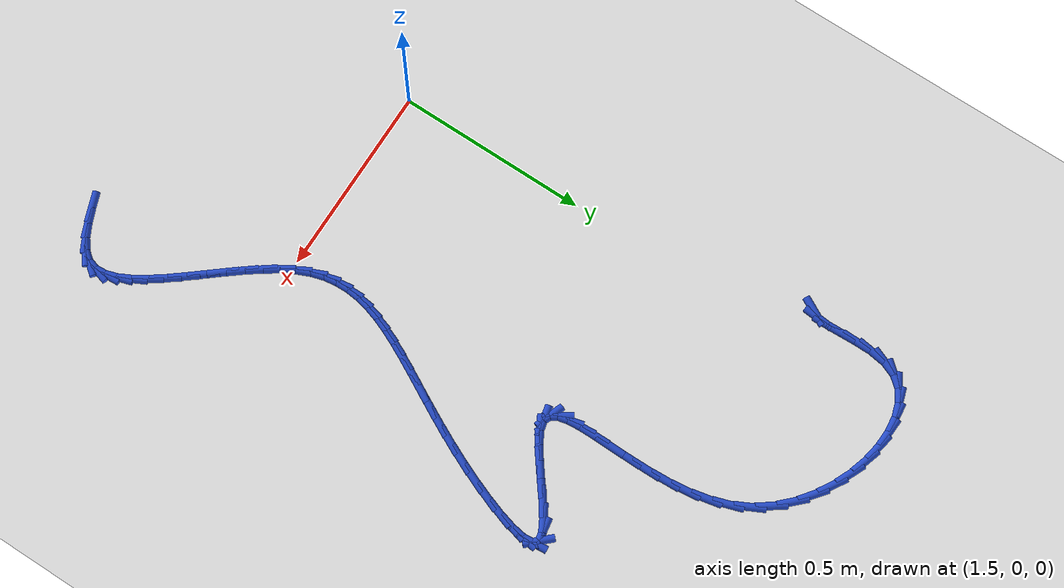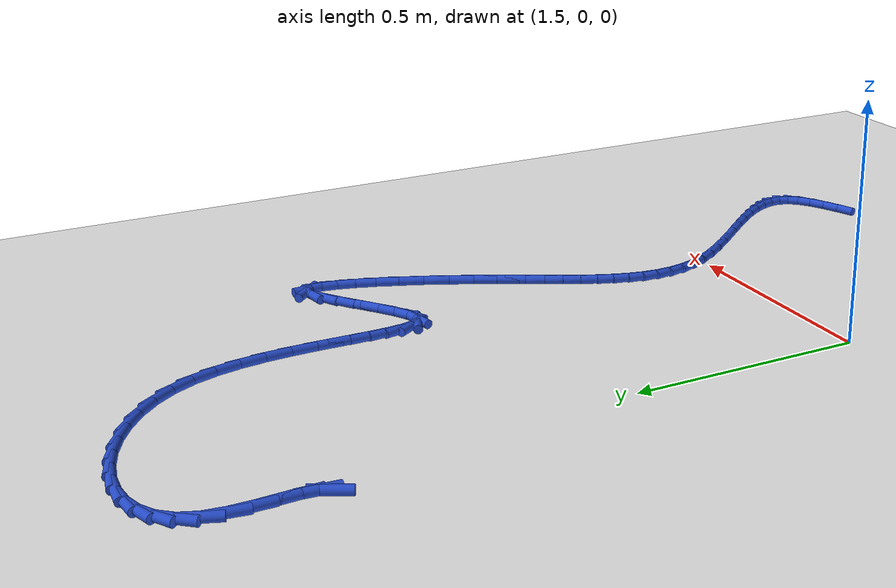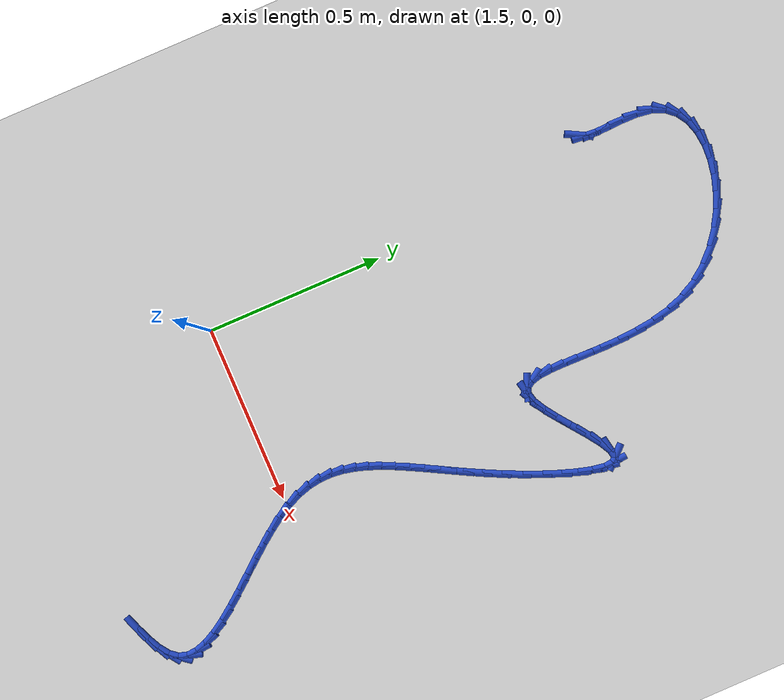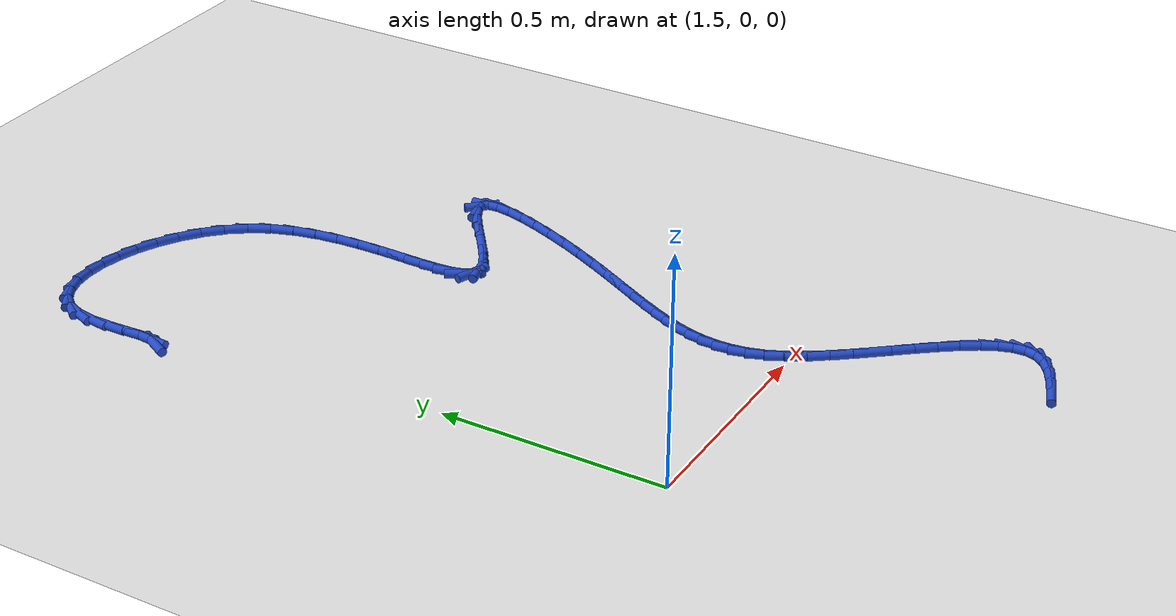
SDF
<sdf version="1.6">
 <world name="default">
  <model name="ground_plane">
   <static>1</static>
   <link name="link">
    <collision name="collision">
     <geometry><plane><normal>0 0 1</normal><size>100 100</size></plane></geometry>
     <surface><friction><ode><mu>100</mu><mu2>50</mu2></ode></friction></surface>
    </collision>
    <visual name="visual">
     <cast_shadows>0</cast_shadows>
     <geometry><plane><normal>0 0 1</normal><size>100 100</size></plane></geometry>
     <material>
      <script><uri>file://media/materials/scripts/gazebo.material</uri><name>Gazebo/WhiteGlow</name></script>
     </material>
    </visual>
   </link>
  </model>
  <model name="line">
   <link name="link_65">
    <pose>1.4097594566142557 1.1373101207919902 0.01 0 1.57 1.073990398935057</pose>
    <collision name="collision">
     <geometry><cylinder><radius>0.01</radius><length>0.08</length></cylinder></geometry>
    </collision>
    <visual name="visual">
     <material>
      <script><name>Gazebo/Blue</name><uri>file://media/materials/scripts/gazebo.material</uri></script>
     </material>
     <geometry><cylinder><radius>0.01</radius><length>0.08</length></cylinder></geometry>
    </visual>
   </link>
   <link name="link_66">
    <pose>1.4186358319287273 1.1536822923600076 0.01 0 1.57 1.4782395024272896</pose>
    <collision name="collision">
     <geometry><cylinder><radius>0.01</radius><length>0.08</length></cylinder></geometry>
    </collision>
    <visual name="visual">
     <material>
      <script><name>Gazebo/Blue</name><uri>file://media/materials/scripts/gazebo.material</uri></script>
     </material>
     <geometry><cylinder><radius>0.01</radius><length>0.08</length></cylinder></geometry>
    </visual>
   </link>
   <link name="link_67">
    <pose>1.4212848355850025 1.1822208132741445 0.01 0 1.57 -1.5417814878944056</pose>
    <collision name="collision">
     <geometry><cylinder><radius>0.01</radius><length>0.08</length></cylinder></geometry>
    </collision>
    <visual name="visual">
     <material>
      <script><name>Gazebo/Blue</name><uri>file://media/materials/scripts/gazebo.material</uri></script>
     </material>
     <geometry><cylinder><radius>0.01</radius><length>0.08</length></cylinder></geometry>
    </visual>
   </link>
   <link name="link_68">
    <pose>1.420191697594676 1.2198853758848303 0.01 0 1.57 -1.5292357707222544</pose>
    <collision name="collision">
     <geometry><cylinder><radius>0.01</radius><length>0.08</length></cylinder></geometry>
    </collision>
    <visual name="visual">
     <material>
      <script><name>Gazebo/Blue</name><uri>file://media/materials/scripts/gazebo.material</uri></script>
     </material>
     <geometry><cylinder><radius>0.01</radius><length>0.08</length></cylinder></geometry>
    </visual>
   </link>
   <link name="link_69">
    <pose>1.4184104249326042 1.2627203888572482 0.01 0 1.57 1.5575257928130686</pose>
    <collision name="collision">
     <geometry><cylinder><radius>0.01</radius><length>0.08</length></cylinder></geometry>
    </collision>
    <visual name="visual">
     <material>
      <script><name>Gazebo/Blue</name><uri>file://media/materials/scripts/gazebo.material</uri></script>
     </material>
     <geometry><cylinder><radius>0.01</radius><length>0.08</length></cylinder></geometry>
    </visual>
   </link>
   <link name="link_70">
    <pose>1.4189950245736465 1.3067702608565814 0.01 0 1.57 1.4264524954980144</pose>
    <collision name="collision">
     <geometry><cylinder><radius>0.01</radius><length>0.08</length></cylinder></geometry>
    </collision>
    <visual name="visual">
     <material>
      <script><name>Gazebo/Blue</name><uri>file://media/materials/scripts/gazebo.material</uri></script>
     </material>
     <geometry><cylinder><radius>0.01</radius><length>0.08</length></cylinder></geometry>
    </visual>
   </link>
   <link name="link_71">
    <pose>1.4249995034926581 1.3480794005480115 0.01 0 1.57 1.1809414222038175</pose>
    <collision name="collision">
     <geometry><cylinder><radius>0.01</radius><length>0.08</length></cylinder></geometry>
    </collision>
    <visual name="visual">
     <material>
      <script><name>Gazebo/Blue</name><uri>file://media/materials/scripts/gazebo.material</uri></script>
     </material>
     <geometry><cylinder><radius>0.01</radius><length>0.08</length></cylinder></geometry>
    </visual>
   </link>
   <link name="link_72">
    <pose>1.4392941006625046 1.3828691501328971 0.01 0 1.57 0.8620911882032548</pose>
    <collision name="collision">
     <geometry><cylinder><radius>0.01</radius><length>0.08</length></cylinder></geometry>
    </collision>
    <visual name="visual">
     <material>
      <script><name>Gazebo/Blue</name><uri>file://media/materials/scripts/gazebo.material</uri></script>
     </material>
     <geometry><cylinder><radius>0.01</radius><length>0.08</length></cylinder></geometry>
    </visual>
   </link>
   <link name="link_73">
    <pose>1.462306453932633 1.4097126108214784 0.01 0 1.57 0.5615721198788256</pose>
    <collision name="collision">
     <geometry><cylinder><radius>0.01</radius><length>0.08</length></cylinder></geometry>
    </collision>
    <visual name="visual">
     <material>
      <script><name>Gazebo/Blue</name><uri>file://media/materials/scripts/gazebo.material</uri></script>
     </material>
     <geometry><cylinder><radius>0.01</radius><length>0.08</length></cylinder></geometry>
    </visual>
   </link>
   <link name="link_74">
    <pose>1.4927295317153917 1.4288530396415071 0.01 0 1.57 0.31068465095912756</pose>
    <collision name="collision">
     <geometry><cylinder><radius>0.01</radius><length>0.08</length></cylinder></geometry>
    </collision>
    <visual name="visual">
     <material>
      <script><name>Gazebo/Blue</name><uri>file://media/materials/scripts/gazebo.material</uri></script>
     </material>
     <geometry><cylinder><radius>0.01</radius><length>0.08</length></cylinder></geometry>
    </visual>
   </link>
   <link name="link_75">
    <pose>1.529219340147345 1.4405692812425621 0.01 0 1.57 0.11045893317691098</pose>
    <collision name="collision">
     <geometry><cylinder><radius>0.01</radius><length>0.08</length></cylinder></geometry>
    </collision>
    <visual name="visual">
     <material>
      <script><name>Gazebo/Blue</name><uri>file://media/materials/scripts/gazebo.material</uri></script>
     </material>
     <geometry><cylinder><radius>0.01</radius><length>0.08</length></cylinder></geometry>
    </visual>
   </link>
   <link name="link_76">
    <pose>1.5704318853650607 1.4451401802742232 0.01 0 1.57 -0.05143547558953934</pose>
    <collision name="collision">
     <geometry><cylinder><radius>0.01</radius><length>0.08</length></cylinder></geometry>
    </collision>
    <visual name="visual">
     <material>
      <script><name>Gazebo/Blue</name><uri>file://media/materials/scripts/gazebo.material</uri></script>
     </material>
     <geometry><cylinder><radius>0.01</radius><length>0.08</length></cylinder></geometry>
    </visual>
   </link>
   <link name="link_77">
    <pose>1.6150231735051037 1.4428445813860702 0.01 0 1.57 -0.1882650131491371</pose>
    <collision name="collision">
     <geometry><cylinder><radius>0.01</radius><length>0.08</length></cylinder></geometry>
    </collision>
    <visual name="visual">
     <material>
      <script><name>Gazebo/Blue</name><uri>file://media/materials/scripts/gazebo.material</uri></script>
     </material>
     <geometry><cylinder><radius>0.01</radius><length>0.08</length></cylinder></geometry>
    </visual>
   </link>
   <link name="link_78">
    <pose>1.6616492107040415 1.4339613292276818 0.01 0 1.57 -0.3106743683656317</pose>
    <collision name="collision">
     <geometry><cylinder><radius>0.01</radius><length>0.08</length></cylinder></geometry>
    </collision>
    <visual name="visual">
     <material>
      <script><name>Gazebo/Blue</name><uri>file://media/materials/scripts/gazebo.material</uri></script>
     </material>
     <geometry><cylinder><radius>0.01</radius><length>0.08</length></cylinder></geometry>
    </visual>
   </link>
   <link name="link_79">
    <pose>1.7089660030984388 1.4187692684486382 0.01 0 1.57 -0.4268284969456083</pose>
    <collision name="collision">
     <geometry><cylinder><radius>0.01</radius><length>0.08</length></cylinder></geometry>
    </collision>
    <visual name="visual">
     <material>
      <script><name>Gazebo/Blue</name><uri>file://media/materials/scripts/gazebo.material</uri></script>
     </material>
     <geometry><cylinder><radius>0.01</radius><length>0.08</length></cylinder></geometry>
    </visual>
   </link>
   <link name="link_80">
    <pose>1.7556295568248619 1.3975472436985188 0.01 0 1.57 -0.5432683136498143</pose>
    <collision name="collision">
     <geometry><cylinder><radius>0.01</radius><length>0.08</length></cylinder></geometry>
    </collision>
    <visual name="visual">
     <material>
      <script><name>Gazebo/Blue</name><uri>file://media/materials/scripts/gazebo.material</uri></script>
     </material>
     <geometry><cylinder><radius>0.01</radius><length>0.08</length></cylinder></geometry>
    </visual>
   </link>
   <link name="link_81">
    <pose>1.8002958780198786 1.3705740996269025 0.01 0 1.57 -0.6656055834820161</pose>
    <collision name="collision">
     <geometry><cylinder><radius>0.01</radius><length>0.08</length></cylinder></geometry>
    </collision>
    <visual name="visual">
     <material>
      <script><name>Gazebo/Blue</name><uri>file://media/materials/scripts/gazebo.material</uri></script>
     </material>
     <geometry><cylinder><radius>0.01</radius><length>0.08</length></cylinder></geometry>
    </visual>
   </link>
   <link name="link_82">
    <pose>1.841620972820053 1.3381286808833697 0.01 0 1.57 -0.7988463482347915</pose>
    <collision name="collision">
     <geometry><cylinder><radius>0.01</radius><length>0.08</length></cylinder></geometry>
    </collision>
    <visual name="visual">
     <material>
      <script><name>Gazebo/Blue</name><uri>file://media/materials/scripts/gazebo.material</uri></script>
     </material>
     <geometry><cylinder><radius>0.01</radius><length>0.08</length></cylinder></geometry>
    </visual>
   </link>
   <link name="link_83">
    <pose>1.8782608473619522 1.3004898321174996 0.01 0 1.57 -0.9472038485041745</pose>
    <collision name="collision">
     <geometry><cylinder><radius>0.01</radius><length>0.08</length></cylinder></geometry>
    </collision>
    <visual name="visual">
     <material>
      <script><name>Gazebo/Blue</name><uri>file://media/materials/scripts/gazebo.material</uri></script>
     </material>
     <geometry><cylinder><radius>0.01</radius><length>0.08</length></cylinder></geometry>
    </visual>
   </link>
   <link name="link_84">
    <pose>1.9088715077821419 1.2579363979788716 0.01 0 1.57 -1.110380265226519</pose>
    <collision name="collision">
     <geometry><cylinder><radius>0.01</radius><length>0.08</length></cylinder></geometry>
    </collision>
    <visual name="visual">
     <material>
      <script><name>Gazebo/Blue</name><uri>file://media/materials/scripts/gazebo.material</uri></script>
     </material>
     <geometry><cylinder><radius>0.01</radius><length>0.08</length></cylinder></geometry>
    </visual>
   </link>
   <link name="link_85">
    <pose>1.932248152015312 1.210802937427662 0.01 0 1.57 -1.2582279417803577</pose>
    <collision name="collision">
     <geometry><cylinder><radius>0.01</radius><length>0.08</length></cylinder></geometry>
    </collision>
    <visual name="visual">
     <material>
      <script><name>Gazebo/Blue</name><uri>file://media/materials/scripts/gazebo.material</uri></script>
     </material>
     <geometry><cylinder><radius>0.01</radius><length>0.08</length></cylinder></geometry>
    </visual>
   </link>
   <link name="link_86">
    <pose>1.9486610533721995 1.160014437946167 0.01 0 1.57 -1.3738588940804595</pose>
    <collision name="collision">
     <geometry><cylinder><radius>0.01</radius><length>0.08</length></cylinder></geometry>
    </collision>
    <visual name="visual">
     <material>
      <script><name>Gazebo/Blue</name><uri>file://media/materials/scripts/gazebo.material</uri></script>
     </material>
     <geometry><cylinder><radius>0.01</radius><length>0.08</length></cylinder></geometry>
    </visual>
   </link>
   <link name="link_87">
    <pose>1.9592683583575459 1.106851276081046 0.01 0 1.57 -1.4611593790795754</pose>
    <collision name="collision">
     <geometry><cylinder><radius>0.01</radius><length>0.08</length></cylinder></geometry>
    </collision>
    <visual name="visual">
     <material>
      <script><name>Gazebo/Blue</name><uri>file://media/materials/scripts/gazebo.material</uri></script>
     </material>
     <geometry><cylinder><radius>0.01</radius><length>0.08</length></cylinder></geometry>
    </visual>
   </link>
   <link name="link_88">
    <pose>1.9652403925103799 1.0525987032818498 0.01 0 1.57 -1.524450691581582</pose>
    <collision name="collision">
     <geometry><cylinder><radius>0.01</radius><length>0.08</length></cylinder></geometry>
    </collision>
    <visual name="visual">
     <material>
      <script><name>Gazebo/Blue</name><uri>file://media/materials/scripts/gazebo.material</uri></script>
     </material>
     <geometry><cylinder><radius>0.01</radius><length>0.08</length></cylinder></geometry>
    </visual>
   </link>
   <link name="link_89">
    <pose>1.9677474813697282 0.9985419709981278 0.01 0 1.57 -1.5667551406680393</pose>
    <collision name="collision">
     <geometry><cylinder><radius>0.01</radius><length>0.08</length></cylinder></geometry>
    </collision>
    <visual name="visual">
     <material>
      <script><name>Gazebo/Blue</name><uri>file://media/materials/scripts/gazebo.material</uri></script>
     </material>
     <geometry><cylinder><radius>0.01</radius><length>0.08</length></cylinder></geometry>
    </visual>
   </link>
   <link name="link_90">
    <pose>1.9679599504746201 0.9459663306794324 0.01 0 1.57 1.5524920476686033</pose>
    <collision name="collision">
     <geometry><cylinder><radius>0.01</radius><length>0.08</length></cylinder></geometry>
    </collision>
    <visual name="visual">
     <material>
      <script><name>Gazebo/Blue</name><uri>file://media/materials/scripts/gazebo.material</uri></script>
     </material>
     <geometry><cylinder><radius>0.01</radius><length>0.08</length></cylinder></geometry>
    </visual>
   </link>
   <link name="link_91">
    <pose>1.9670481253640832 0.896157033775314 0.01 0 1.57 1.551877315386698</pose>
    <collision name="collision">
     <geometry><cylinder><radius>0.01</radius><length>0.08</length></cylinder></geometry>
    </collision>
    <visual name="visual">
     <material>
      <script><name>Gazebo/Blue</name><uri>file://media/materials/scripts/gazebo.material</uri></script>
     </material>
     <geometry><cylinder><radius>0.01</radius><length>0.08</length></cylinder></geometry>
    </visual>
   </link>
   <link name="link_92">
    <pose>1.9661823315771447 0.8503993317353225 0.01 0 1.57 -1.5621237175627367</pose>
    <collision name="collision">
     <geometry><cylinder><radius>0.01</radius><length>0.08</length></cylinder></geometry>
    </collision>
    <visual name="visual">
     <material>
      <script><name>Gazebo/Blue</name><uri>file://media/materials/scripts/gazebo.material</uri></script>
     </material>
     <geometry><cylinder><radius>0.01</radius><length>0.08</length></cylinder></geometry>
    </visual>
   </link>
   <link name="link_93">
    <pose>1.966532894652834 0.8099784760090086 0.01 0 1.57 -1.489986122174242</pose>
    <collision name="collision">
     <geometry><cylinder><radius>0.01</radius><length>0.08</length></cylinder></geometry>
    </collision>
    <visual name="visual">
     <material>
      <script><name>Gazebo/Blue</name><uri>file://media/materials/scripts/gazebo.material</uri></script>
     </material>
     <geometry><cylinder><radius>0.01</radius><length>0.08</length></cylinder></geometry>
    </visual>
   </link>
   <link name="link_94">
    <pose>1.9692701401301786 0.7761797180459242 0.01 0 1.57 -1.3323203555880963</pose>
    <collision name="collision">
     <geometry><cylinder><radius>0.01</radius><length>0.08</length></cylinder></geometry>
    </collision>
    <visual name="visual">
     <material>
      <script><name>Gazebo/Blue</name><uri>file://media/materials/scripts/gazebo.material</uri></script>
     </material>
     <geometry><cylinder><radius>0.01</radius><length>0.08</length></cylinder></geometry>
    </visual>
   </link>
   <link name="link_95">
    <pose>1.9755643935482072 0.7502883092956194 0.01 0 1.57 -0.9874077373202598</pose>
    <collision name="collision">
     <geometry><cylinder><radius>0.01</radius><length>0.08</length></cylinder></geometry>
    </collision>
    <visual name="visual">
     <material>
      <script><name>Gazebo/Blue</name><uri>file://media/materials/scripts/gazebo.material</uri></script>
     </material>
     <geometry><cylinder><radius>0.01</radius><length>0.08</length></cylinder></geometry>
    </visual>
   </link>
   <link name="link_96">
    <pose>1.9865859804459465 0.7335895012076443 0.01 0 1.57 -0.3523423061189216</pose>
    <collision name="collision">
     <geometry><cylinder><radius>0.01</radius><length>0.08</length></cylinder></geometry>
    </collision>
    <visual name="visual">
     <material>
      <script><name>Gazebo/Blue</name><uri>file://media/materials/scripts/gazebo.material</uri></script>
     </material>
     <geometry><cylinder><radius>0.01</radius><length>0.08</length></cylinder></geometry>
    </visual>
   </link>
   <link name="link_97">
    <pose>2.003505226362426 0.7273685452315507 0.01 0 1.57 0.22686735148599937</pose>
    <collision name="collision">
     <geometry><cylinder><radius>0.01</radius><length>0.08</length></cylinder></geometry>
    </collision>
    <visual name="visual">
     <material>
      <script><name>Gazebo/Blue</name><uri>file://media/materials/scripts/gazebo.material</uri></script>
     </material>
     <geometry><cylinder><radius>0.01</radius><length>0.08</length></cylinder></geometry>
    </visual>
   </link>
   <link name="link_98">
    <pose>2.027488308505057 0.732904833092843 0.01 0 1.57 0.5017308571314343</pose>
    <collision name="collision">
     <geometry><cylinder><radius>0.01</radius><length>0.08</length></cylinder></geometry>
    </collision>
    <visual name="visual">
     <material>
      <script><name>Gazebo/Blue</name><uri>file://media/materials/scripts/gazebo.material</uri></script>
     </material>
     <geometry><cylinder><radius>0.01</radius><length>0.08</length></cylinder></geometry>
    </visual>
   </link>
   <link name="link_99">
    <pose>2.0586569983275576 0.7500024816173153 0.01 0 1.57 0.6071374303865636</pose>
    <collision name="collision">
     <geometry><cylinder><radius>0.01</radius><length>0.08</length></cylinder></geometry>
    </collision>
    <visual name="visual">
     <material>
      <script><name>Gazebo/Blue</name><uri>file://media/materials/scripts/gazebo.material</uri></script>
     </material>
     <geometry><cylinder><radius>0.01</radius><length>0.08</length></cylinder></geometry>
    </visual>
   </link>
   <link name="link_100">
    <pose>2.094716111932622 0.7750515383856691 0.01 0 1.57 0.6463992849653158</pose>
    <collision name="collision">
     <geometry><cylinder><radius>0.01</radius><length>0.08</length></cylinder></geometry>
    </collision>
    <visual name="visual">
     <material>
      <script><name>Gazebo/Blue</name><uri>file://media/materials/scripts/gazebo.material</uri></script>
     </material>
     <geometry><cylinder><radius>0.01</radius><length>0.08</length></cylinder></geometry>
    </visual>
   </link>
   <link name="link_101">
    <pose>2.1330295544176754 0.8039604972842391 0.01 0 1.57 0.6473469638280287</pose>
    <collision name="collision">
     <geometry><cylinder><radius>0.01</radius><length>0.08</length></cylinder></geometry>
    </collision>
    <visual name="visual">
     <material>
      <script><name>Gazebo/Blue</name><uri>file://media/materials/scripts/gazebo.material</uri></script>
     </material>
     <geometry><cylinder><radius>0.01</radius><length>0.08</length></cylinder></geometry>
    </visual>
   </link>
   <link name="link_102">
    <pose>2.1709612308801427 0.8326378521993596 0.01 0 1.57 0.6090819489266026</pose>
    <collision name="collision">
     <geometry><cylinder><radius>0.01</radius><length>0.08</length></cylinder></geometry>
    </collision>
    <visual name="visual">
     <material>
      <script><name>Gazebo/Blue</name><uri>file://media/materials/scripts/gazebo.material</uri></script>
     </material>
     <geometry><cylinder><radius>0.01</radius><length>0.08</length></cylinder></geometry>
    </visual>
   </link>
   <link name="link_103">
    <pose>2.205875046417448 0.8569920970173659 0.01 0 1.57 0.49881200174391405</pose>
    <collision name="collision">
     <geometry><cylinder><radius>0.01</radius><length>0.08</length></cylinder></geometry>
    </collision>
    <visual name="visual">
     <material>
      <script><name>Gazebo/Blue</name><uri>file://media/materials/scripts/gazebo.material</uri></script>
     </material>
     <geometry><cylinder><radius>0.01</radius><length>0.08</length></cylinder></geometry>
    </visual>
   </link>
   <link name="link_104">
    <pose>2.235134906127017 0.8729317256245923 0.01 0 1.57 0.16240097471707224</pose>
    <collision name="collision">
     <geometry><cylinder><radius>0.01</radius><length>0.08</length></cylinder></geometry>
    </collision>
    <visual name="visual">
     <material>
      <script><name>Gazebo/Blue</name><uri>file://media/materials/scripts/gazebo.material</uri></script>
     </material>
     <geometry><cylinder><radius>0.01</radius><length>0.08</length></cylinder></geometry>
    </visual>
   </link>
   <link name="link_105">
    <pose>2.256106227453686 0.8763677492120009 0.01 0 1.57 -0.809429939324383</pose>
    <collision name="collision">
     <geometry><cylinder><radius>0.01</radius><length>0.08</length></cylinder></geometry>
    </collision>
    <visual name="visual">
     <material>
      <script><name>Gazebo/Blue</name><uri>file://media/materials/scripts/gazebo.material</uri></script>
     </material>
     <geometry><cylinder><radius>0.01</radius><length>0.08</length></cylinder></geometry>
    </visual>
   </link>
   <link name="link_106">
    <pose>2.2671174568693138 0.8648141422892237 0.01 0 1.57 -1.490223417235778</pose>
    <collision name="collision">
     <geometry><cylinder><radius>0.01</radius><length>0.08</length></cylinder></geometry>
    </collision>
    <visual name="visual">
     <material>
      <script><name>Gazebo/Blue</name><uri>file://media/materials/scripts/gazebo.material</uri></script>
     </material>
     <geometry><cylinder><radius>0.01</radius><length>0.08</length></cylinder></geometry>
    </visual>
   </link>
   <link name="link_107">
    <pose>2.2691102730367874 0.8401346084268484 0.01 0 1.57 1.4118323246787534</pose>
    <collision name="collision">
     <geometry><cylinder><radius>0.01</radius><length>0.08</length></cylinder></geometry>
    </collision>
    <visual name="visual">
     <material>
      <script><name>Gazebo/Blue</name><uri>file://media/materials/scripts/gazebo.material</uri></script>
     </material>
     <geometry><cylinder><radius>0.01</radius><length>0.08</length></cylinder></geometry>
    </visual>
   </link>
   <link name="link_108">
    <pose>2.2634653572732 0.8049235717986297 0.01 0 1.57 1.301649551858443</pose>
    <collision name="collision">
     <geometry><cylinder><radius>0.01</radius><length>0.08</length></cylinder></geometry>
    </collision>
    <visual name="visual">
     <material>
      <script><name>Gazebo/Blue</name><uri>file://media/materials/scripts/gazebo.material</uri></script>
     </material>
     <geometry><cylinder><radius>0.01</radius><length>0.08</length></cylinder></geometry>
    </visual>
   </link>
   <link name="link_109">
    <pose>2.251563390895647 0.7617754565783236 0.01 0 1.57 1.2376796667620857</pose>
    <collision name="collision">
     <geometry><cylinder><radius>0.01</radius><length>0.08</length></cylinder></geometry>
    </collision>
    <visual name="visual">
     <material>
      <script><name>Gazebo/Blue</name><uri>file://media/materials/scripts/gazebo.material</uri></script>
     </material>
     <geometry><cylinder><radius>0.01</radius><length>0.08</length></cylinder></geometry>
    </visual>
   </link>
   <link name="link_110">
    <pose>2.2347850552212227 0.7132846869396846 0.01 0 1.57 1.194023403120395</pose>
    <collision name="collision">
     <geometry><cylinder><radius>0.01</radius><length>0.08</length></cylinder></geometry>
    </collision>
    <visual name="visual">
     <material>
      <script><name>Gazebo/Blue</name><uri>file://media/materials/scripts/gazebo.material</uri></script>
     </material>
     <geometry><cylinder><radius>0.01</radius><length>0.08</length></cylinder></geometry>
    </visual>
   </link>
   <link name="link_111">
    <pose>2.2145110315670213 0.6620456870564677 0.01 0 1.57 1.1599437429543957</pose>
    <collision name="collision">
     <geometry><cylinder><radius>0.01</radius><length>0.08</length></cylinder></geometry>
    </collision>
    <visual name="visual">
     <material>
      <script><name>Gazebo/Blue</name><uri>file://media/materials/scripts/gazebo.material</uri></script>
     </material>
     <geometry><cylinder><radius>0.01</radius><length>0.08</length></cylinder></geometry>
    </visual>
   </link>
   <link name="link_112">
    <pose>2.1921220012501355 0.6106528811024273 0.01 0 1.57 1.1299718458950092</pose>
    <collision name="collision">
     <geometry><cylinder><radius>0.01</radius><length>0.08</length></cylinder></geometry>
    </collision>
    <visual name="visual">
     <material>
      <script><name>Gazebo/Blue</name><uri>file://media/materials/scripts/gazebo.material</uri></script>
     </material>
     <geometry><cylinder><radius>0.01</radius><length>0.08</length></cylinder></geometry>
    </visual>
   </link>
   <link name="link_113">
    <pose>2.168918463866152 0.561470767834101 0.01 0 1.57 1.104672933010941</pose>
    <collision name="collision">
     <geometry><cylinder><radius>0.01</radius><length>0.08</length></cylinder></geometry>
    </collision>
    <visual name="visual">
     <material>
      <script><name>Gazebo/Blue</name><uri>file://media/materials/scripts/gazebo.material</uri></script>
     </material>
     <geometry><cylinder><radius>0.01</radius><length>0.08</length></cylinder></geometry>
    </visual>
   </link>
   <link name="link_114">
    <pose>2.1455777213297997 0.5150767929978869 0.01 0 1.57 1.0862193542820318</pose>
    <collision name="collision">
     <geometry><cylinder><radius>0.01</radius><length>0.08</length></cylinder></geometry>
    </collision>
    <visual name="visual">
     <material>
      <script><name>Gazebo/Blue</name><uri>file://media/materials/scripts/gazebo.material</uri></script>
     </material>
     <geometry><cylinder><radius>0.01</radius><length>0.08</length></cylinder></geometry>
    </visual>
   </link>
   <link name="link_115">
    <pose>2.1224853145571627 0.47121176191792086 0.01 0 1.57 1.0757344473168289</pose>
    <collision name="collision">
     <geometry><cylinder><radius>0.01</radius><length>0.08</length></cylinder></geometry>
    </collision>
    <visual name="visual">
     <material>
      <script><name>Gazebo/Blue</name><uri>file://media/materials/scripts/gazebo.material</uri></script>
     </material>
     <geometry><cylinder><radius>0.01</radius><length>0.08</length></cylinder></geometry>
    </visual>
   </link>
   <link name="link_116">
    <pose>2.1000251195475172 0.4296117056794579 0.01 0 1.57 1.074478589093056</pose>
    <collision name="collision">
     <geometry><cylinder><radius>0.01</radius><length>0.08</length></cylinder></geometry>
    </collision>
    <visual name="visual">
     <material>
      <script><name>Gazebo/Blue</name><uri>file://media/materials/scripts/gazebo.material</uri></script>
     </material>
     <geometry><cylinder><radius>0.01</radius><length>0.08</length></cylinder></geometry>
    </visual>
   </link>
   <link name="link_117">
    <pose>2.0785810123001367 0.3900126553677511 0.01 0 1.57 1.083906415320776</pose>
    <collision name="collision">
     <geometry><cylinder><radius>0.01</radius><length>0.08</length></cylinder></geometry>
    </collision>
    <visual name="visual">
     <material>
      <script><name>Gazebo/Blue</name><uri>file://media/materials/scripts/gazebo.material</uri></script>
     </material>
     <geometry><cylinder><radius>0.01</radius><length>0.08</length></cylinder></geometry>
    </visual>
   </link>
   <link name="link_118">
    <pose>2.0585368688142953 0.35215064206805397 0.01 0 1.57 1.1057024879222754</pose>
    <collision name="collision">
     <geometry><cylinder><radius>0.01</radius><length>0.08</length></cylinder></geometry>
    </collision>
    <visual name="visual">
     <material>
      <script><name>Gazebo/Blue</name><uri>file://media/materials/scripts/gazebo.material</uri></script>
     </material>
     <geometry><cylinder><radius>0.01</radius><length>0.08</length></cylinder></geometry>
    </visual>
   </link>
   <link name="link_119">
    <pose>2.040276565089268 0.3157616968656198 0.01 0 1.57 1.141774446383381</pose>
    <collision name="collision">
     <geometry><cylinder><radius>0.01</radius><length>0.08</length></cylinder></geometry>
    </collision>
    <visual name="visual">
     <material>
      <script><name>Gazebo/Blue</name><uri>file://media/materials/scripts/gazebo.material</uri></script>
     </material>
     <geometry><cylinder><radius>0.01</radius><length>0.08</length></cylinder></geometry>
    </visual>
   </link>
   <link name="link_120">
    <pose>2.0241839771243293 0.2805818508457032 0.01 0 1.57 1.1941458145308586</pose>
    <collision name="collision">
     <geometry><cylinder><radius>0.01</radius><length>0.08</length></cylinder></geometry>
    </collision>
    <visual name="visual">
     <material>
      <script><name>Gazebo/Blue</name><uri>file://media/materials/scripts/gazebo.material</uri></script>
     </material>
     <geometry><cylinder><radius>0.01</radius><length>0.08</length></cylinder></geometry>
    </visual>
   </link>
   <link name="link_121">
    <pose>2.0106429809187527 0.2463471350935573 0.01 0 1.57 1.2646554374076178</pose>
    <collision name="collision">
     <geometry><cylinder><radius>0.01</radius><length>0.08</length></cylinder></geometry>
    </collision>
    <visual name="visual">
     <material>
      <script><name>Gazebo/Blue</name><uri>file://media/materials/scripts/gazebo.material</uri></script>
     </material>
     <geometry><cylinder><radius>0.01</radius><length>0.08</length></cylinder></geometry>
    </visual>
   </link>
   <link name="link_122">
    <pose>2.0000374524718136 0.21279358069443569 0.01 0 1.57 1.3543558380748097</pose>
    <collision name="collision">
     <geometry><cylinder><radius>0.01</radius><length>0.08</length></cylinder></geometry>
    </collision>
    <visual name="visual">
     <material>
      <script><name>Gazebo/Blue</name><uri>file://media/materials/scripts/gazebo.material</uri></script>
     </material>
     <geometry><cylinder><radius>0.01</radius><length>0.08</length></cylinder></geometry>
    </visual>
   </link>
   <link name="link_123">
    <pose>1.9927512677827866 0.17965721873359214 0.01 0 1.57 1.4625904240892007</pose>
    <collision name="collision">
     <geometry><cylinder><radius>0.01</radius><length>0.08</length></cylinder></geometry>
    </collision>
    <visual name="visual">
     <material>
      <script><name>Gazebo/Blue</name><uri>file://media/materials/scripts/gazebo.material</uri></script>
     </material>
     <geometry><cylinder><radius>0.01</radius><length>0.08</length></cylinder></geometry>
    </visual>
   </link>
   <link name="link_124">
    <pose>1.9891683028509444 0.14667408029628026 0.01 0 1.57 -1.5555641516506542</pose>
    <collision name="collision">
     <geometry><cylinder><radius>0.01</radius><length>0.08</length></cylinder></geometry>
    </collision>
    <visual name="visual">
     <material>
      <script><name>Gazebo/Blue</name><uri>file://media/materials/scripts/gazebo.material</uri></script>
     </material>
     <geometry><cylinder><radius>0.01</radius><length>0.08</length></cylinder></geometry>
    </visual>
   </link>
   <link name="link_125">
    <pose>1.9896724336755636 0.11358019646775279 0.01 0 1.57 -1.4232270658372455</pose>
    <collision name="collision">
     <geometry><cylinder><radius>0.01</radius><length>0.08</length></cylinder></geometry>
    </collision>
    <visual name="visual">
     <material>
      <script><name>Gazebo/Blue</name><uri>file://media/materials/scripts/gazebo.material</uri></script>
     </material>
     <geometry><cylinder><radius>0.01</radius><length>0.08</length></cylinder></geometry>
    </visual>
   </link>
   <link name="link_126">
    <pose>1.994647536255917 0.08011159833326521 0.01 0 1.57 -1.2901937902644658</pose>
    <collision name="collision">
     <geometry><cylinder><radius>0.01</radius><length>0.08</length></cylinder></geometry>
    </collision>
    <visual name="visual">
     <material>
      <script><name>Gazebo/Blue</name><uri>file://media/materials/scripts/gazebo.material</uri></script>
     </material>
     <geometry><cylinder><radius>0.01</radius><length>0.08</length></cylinder></geometry>
    </visual>
   </link>
   <link name="link_127">
    <pose>2.00447748659128 0.04600431697807021 0.01 0 1.57 -1.1643511276148535</pose>
    <collision name="collision">
     <geometry><cylinder><radius>0.01</radius><length>0.08</length></cylinder></geometry>
    </collision>
    <visual name="visual">
     <material>
      <script><name>Gazebo/Blue</name><uri>file://media/materials/scripts/gazebo.material</uri></script>
     </material>
     <geometry><cylinder><radius>0.01</radius><length>0.08</length></cylinder></geometry>
    </visual>
   </link>
   <link name="link_128">
    <pose>2.0195461606809264 0.010994383487421489 0.01 0 1.57 -1.0555557417945738</pose>
    <collision name="collision">
     <geometry><cylinder><radius>0.01</radius><length>0.08</length></cylinder></geometry>
    </collision>
    <visual name="visual">
     <material>
      <script><name>Gazebo/Blue</name><uri>file://media/materials/scripts/gazebo.material</uri></script>
     </material>
     <geometry><cylinder><radius>0.01</radius><length>0.08</length></cylinder></geometry>
    </visual>
   </link>
   <link name="link_129">
    <pose>2.0399775375032227 -0.02508692702439652 0.01 0 1.57 -0.9785317184712676</pose>
    <collision name="collision">
     <geometry><cylinder><radius>0.01</radius><length>0.08</length></cylinder></geometry>
    </collision>
    <visual name="visual">
     <material>
      <script><name>Gazebo/Blue</name><uri>file://media/materials/scripts/gazebo.material</uri></script>
     </material>
     <geometry><cylinder><radius>0.01</radius><length>0.08</length></cylinder></geometry>
    </visual>
   </link>
   <link name="link_130">
    <pose>2.0648248837781162 -0.06201595730239968 0.01 0 1.57 -0.9281186041048868</pose>
    <collision name="collision">
     <geometry><cylinder><radius>0.01</radius><length>0.08</length></cylinder></geometry>
    </collision>
    <visual name="visual">
     <material>
      <script><name>Gazebo/Blue</name><uri>file://media/materials/scripts/gazebo.material</uri></script>
     </material>
     <geometry><cylinder><radius>0.01</radius><length>0.08</length></cylinder></geometry>
    </visual>
   </link>
   <link name="link_131">
    <pose>2.092865775570207 -0.09946801819562653 0.01 0 1.57 -0.8978119294656448</pose>
    <collision name="collision">
     <geometry><cylinder><radius>0.01</radius><length>0.08</length></cylinder></geometry>
    </collision>
    <visual name="visual">
     <material>
      <script><name>Gazebo/Blue</name><uri>file://media/materials/scripts/gazebo.material</uri></script>
     </material>
     <geometry><cylinder><radius>0.01</radius><length>0.08</length></cylinder></geometry>
    </visual>
   </link>
   <link name="link_132">
    <pose>2.122877788689597 -0.13711842045985093 0.01 0 1.57 -0.884122336869295</pose>
    <collision name="collision">
     <geometry><cylinder><radius>0.01</radius><length>0.08</length></cylinder></geometry>
    </collision>
    <visual name="visual">
     <material>
      <script><name>Gazebo/Blue</name><uri>file://media/materials/scripts/gazebo.material</uri></script>
     </material>
     <geometry><cylinder><radius>0.01</radius><length>0.08</length></cylinder></geometry>
    </visual>
   </link>
   <link name="link_133">
    <pose>2.153638498946391 -0.17464247485084422 0.01 0 1.57 -0.8858021927125995</pose>
    <collision name="collision">
     <geometry><cylinder><radius>0.01</radius><length>0.08</length></cylinder></geometry>
    </collision>
    <visual name="visual">
     <material>
      <script><name>Gazebo/Blue</name><uri>file://media/materials/scripts/gazebo.material</uri></script>
     </material>
     <geometry><cylinder><radius>0.01</radius><length>0.08</length></cylinder></geometry>
    </visual>
   </link>
   <link name="link_134">
    <pose>2.183925482150691 -0.2117154921243804 0.01 0 1.57 -0.9036097633621898</pose>
    <collision name="collision">
     <geometry><cylinder><radius>0.01</radius><length>0.08</length></cylinder></geometry>
    </collision>
    <visual name="visual">
     <material>
      <script><name>Gazebo/Blue</name><uri>file://media/materials/scripts/gazebo.material</uri></script>
     </material>
     <geometry><cylinder><radius>0.01</radius><length>0.08</length></cylinder></geometry>
    </visual>
   </link>
   <link name="link_135">
    <pose>2.2125163141126003 -0.2480127830362327 0.01 0 1.57 -0.9406164818637697</pose>
    <collision name="collision">
     <geometry><cylinder><radius>0.01</radius><length>0.08</length></cylinder></geometry>
    </collision>
    <visual name="visual">
     <material>
      <script><name>Gazebo/Blue</name><uri>file://media/materials/scripts/gazebo.material</uri></script>
     </material>
     <geometry><cylinder><radius>0.01</radius><length>0.08</length></cylinder></geometry>
    </visual>
   </link>
   <link name="link_136">
    <pose>2.2381885706422238 -0.2832096583421741 0.01 0 1.57 -1.0032217900595495</pose>
    <collision name="collision">
     <geometry><cylinder><radius>0.01</radius><length>0.08</length></cylinder></geometry>
    </collision>
    <visual name="visual">
     <material>
      <script><name>Gazebo/Blue</name><uri>file://media/materials/scripts/gazebo.material</uri></script>
     </material>
     <geometry><cylinder><radius>0.01</radius><length>0.08</length></cylinder></geometry>
    </visual>
   </link>
   <link name="link_137">
    <pose>2.2597198275496626 -0.31698142879797764 0.01 0 1.57 -1.103237967934954</pose>
    <collision name="collision">
     <geometry><cylinder><radius>0.01</radius><length>0.08</length></cylinder></geometry>
    </collision>
    <visual name="visual">
     <material>
      <script><name>Gazebo/Blue</name><uri>file://media/materials/scripts/gazebo.material</uri></script>
     </material>
     <geometry><cylinder><radius>0.01</radius><length>0.08</length></cylinder></geometry>
    </visual>
   </link>
   <link name="link_138">
    <pose>2.2758876606450213 -0.3490034051594167 0.01 0 1.57 -1.2611301146662752</pose>
    <collision name="collision">
     <geometry><cylinder><radius>0.01</radius><length>0.08</length></cylinder></geometry>
    </collision>
    <visual name="visual">
     <material>
      <script><name>Gazebo/Blue</name><uri>file://media/materials/scripts/gazebo.material</uri></script>
     </material>
     <geometry><cylinder><radius>0.01</radius><length>0.08</length></cylinder></geometry>
    </visual>
   </link>
   <link name="link_139">
    <pose>2.2854696457384036 -0.37895089818226424 0.01 0 1.57 -1.5064995573784603</pose>
    <collision name="collision">
     <geometry><cylinder><radius>0.01</radius><length>0.08</length></cylinder></geometry>
    </collision>
    <visual name="visual">
     <material>
      <script><name>Gazebo/Blue</name><uri>file://media/materials/scripts/gazebo.material</uri></script>
     </material>
     <geometry><cylinder><radius>0.01</radius><length>0.08</length></cylinder></geometry>
    </visual>
   </link>
   <link name="link_140">
    <pose>2.2872433586399104 -0.4064992186222939 0.01 0 1.57 1.28638916185608</pose>
    <collision name="collision">
     <geometry><cylinder><radius>0.01</radius><length>0.08</length></cylinder></geometry>
    </collision>
    <visual name="visual">
     <material>
      <script><name>Gazebo/Blue</name><uri>file://media/materials/scripts/gazebo.material</uri></script>
     </material>
     <geometry><cylinder><radius>0.01</radius><length>0.08</length></cylinder></geometry>
    </visual>
   </link>
   <link name="link_141">
    <pose>2.279986375159647 -0.43132367723527754 0.01 0 1.57 0.8988114284523768</pose>
    <collision name="collision">
     <geometry><cylinder><radius>0.01</radius><length>0.08</length></cylinder></geometry>
    </collision>
    <visual name="visual">
     <material>
      <script><name>Gazebo/Blue</name><uri>file://media/materials/scripts/gazebo.material</uri></script>
     </material>
     <geometry><cylinder><radius>0.01</radius><length>0.08</length></cylinder></geometry>
    </visual>
   </link>
   <link name="link_142">
    <pose>2.2626260328348953 -0.45314713432467263 0.01 0 1.57 0.6223300587370241</pose>
    <collision name="collision">
     <geometry><cylinder><radius>0.01</radius><length>0.08</length></cylinder></geometry>
    </collision>
    <visual name="visual">
     <material>
      <script><name>Gazebo/Blue</name><uri>file://media/materials/scripts/gazebo.material</uri></script>
     </material>
     <geometry><cylinder><radius>0.01</radius><length>0.08</length></cylinder></geometry>
    </visual>
   </link>
   <link name="link_143">
    <pose>2.2359522022159593 -0.4722838069042451 0.01 0 1.57 0.46828231250412067</pose>
    <collision name="collision">
     <geometry><cylinder><radius>0.01</radius><length>0.08</length></cylinder></geometry>
    </collision>
    <visual name="visual">
     <material>
      <script><name>Gazebo/Blue</name><uri>file://media/materials/scripts/gazebo.material</uri></script>
     </material>
     <geometry><cylinder><radius>0.01</radius><length>0.08</length></cylinder></geometry>
    </visual>
   </link>
   <link name="link_144">
    <pose>2.202016743421031 -0.4894485953550321 0.01 0 1.57 0.3863733285070805</pose>
    <collision name="collision">
     <geometry><cylinder><radius>0.01</radius><length>0.08</length></cylinder></geometry>
    </collision>
    <visual name="visual">
     <material>
      <script><name>Gazebo/Blue</name><uri>file://media/materials/scripts/gazebo.material</uri></script>
     </material>
     <geometry><cylinder><radius>0.01</radius><length>0.08</length></cylinder></geometry>
    </visual>
   </link>
   <link name="link_145">
    <pose>2.1628954354941805 -0.5053639943488684 0.01 0 1.57 0.34943254080518793</pose>
    <collision name="collision">
     <geometry><cylinder><radius>0.01</radius><length>0.08</length></cylinder></geometry>
    </collision>
    <visual name="visual">
     <material>
      <script><name>Gazebo/Blue</name><uri>file://media/materials/scripts/gazebo.material</uri></script>
     </material>
     <geometry><cylinder><radius>0.01</radius><length>0.08</length></cylinder></geometry>
    </visual>
   </link>
  </model>
 </world>
</sdf>
